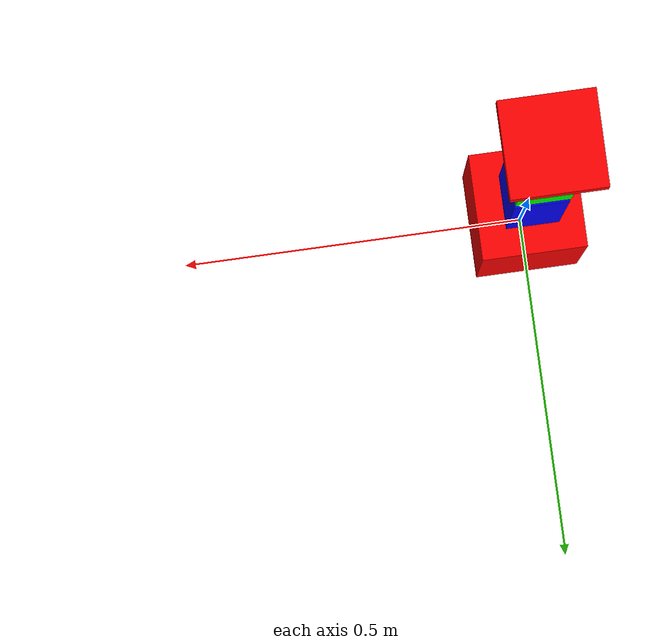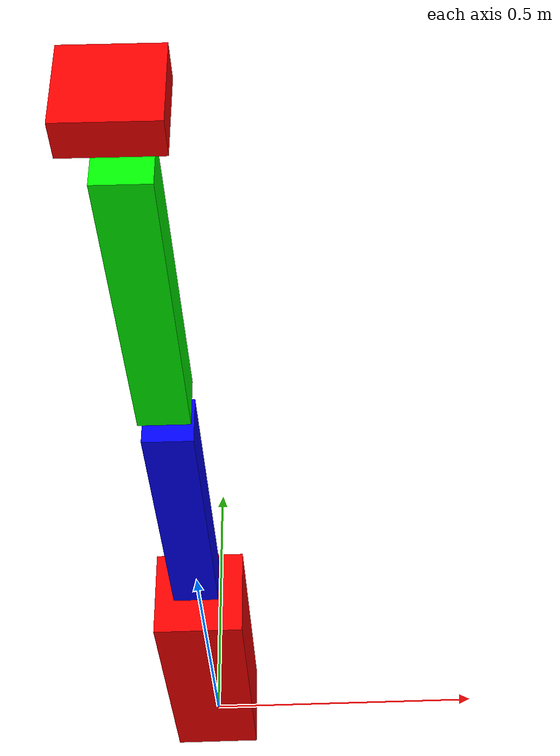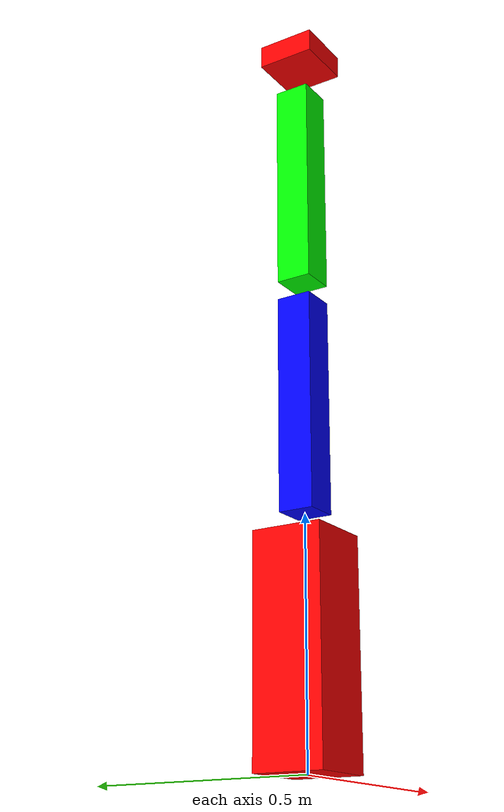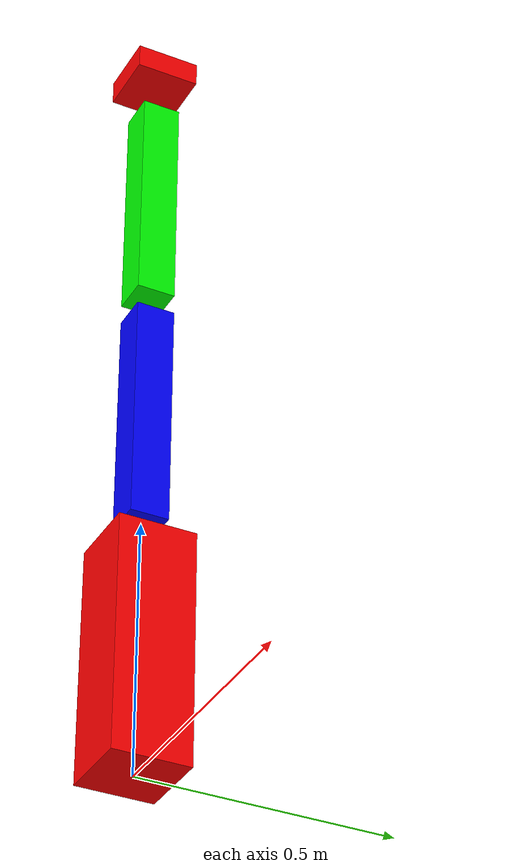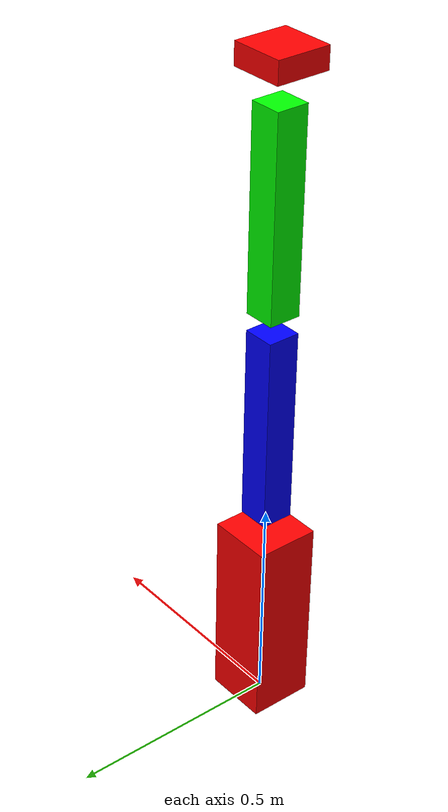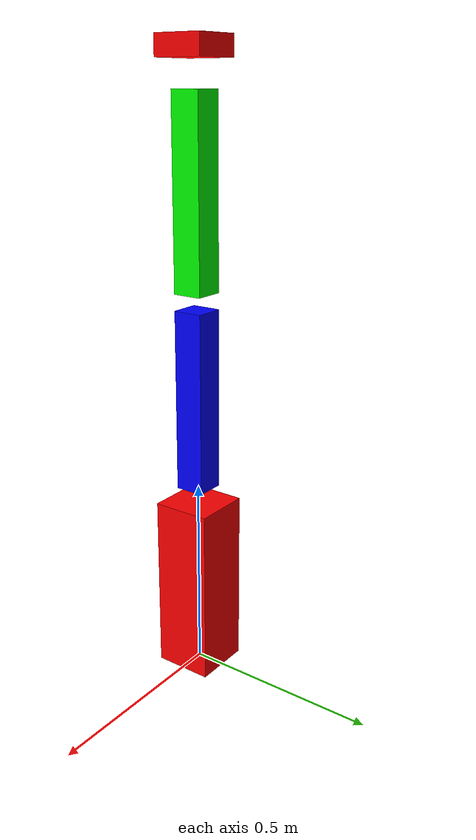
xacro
<?xml version="1.0"?>
<robot name="origins">
  <material name = "red">
     <color rgba = "1 0 0 1 "/>
  </material>
  <material name = "blue">
     <color rgba = "0 0 1 1 "/>
  </material>
  <material name = "green">
     <color rgba = "0 1 0 1 "/>
  </material>

  <link name="base_link">
    <visual>
      <geometry>
        <box size = " 0.15 0.15 0.46"/>
      </geometry>
      <origin xyz =" 0 0 0.23" rpy = " 0 0 0 "/>
      <material name = "red" />
    </visual>
    <collision>
      <geometry>
        <box size = " 0.15 0.15 0.46"/>
      </geometry>
    </collision>
    <inertial>
  <mass value="0.1"/>
  <inertia ixx="4.17e-4" ixy="0.0" ixz="0.0"
           iyy="1.75e-3" iyz="0.0"
           izz="2.08e-3"/>
   </inertial>

  </link>

<link name="box3">
    <visual>
      <geometry>
        <box size = " 0.075 0.075 0.46"/>
      </geometry>
      <origin xyz =" 0 0 0.23" rpy = " 0 0 0 "/>
      <material name = "green" />
    </visual>
    <collision>
      <geometry>
        <box size = " 0.15 0.15 0.46"/>
      </geometry>
    </collision>
    <inertial>
  <mass value="0.1"/>
  <inertia ixx="4.17e-4" ixy="0.0" ixz="0.0"
           iyy="1.75e-3" iyz="0.0"
           izz="2.08e-3"/>
   </inertial>
  </link>

  <link name="box2">
    <visual>
      <geometry>
        <box size = " 0.075 0.075 0.46"/>
      </geometry>
      <origin xyz =" 0 0 0.23" rpy = " 0 0 0 "/>
      <material name = "blue" />
    </visual>
    <collision>
      <geometry>
        <box size = " 0.15 0.15 0.46"/>
      </geometry>
    </collision>
    <inertial>
  <mass value="0.1"/>
  <inertia ixx="4.17e-4" ixy="0.0" ixz="0.0"
           iyy="1.75e-3" iyz="0.0"
           izz="2.08e-3"/>
   </inertial>
  </link>

  <link name="box4">
    <visual>
      <geometry>
        <box size = " 0.125 0.125 0.05"/>
      </geometry>
      <origin xyz =" 0 0 0.05" rpy = " 0 0 0 "/>
      <material name = "red" />
    </visual>
    <collision>
      <geometry>
        <box size = " 0.15 0.15 0.46"/>
      </geometry>
    </collision>
    <inertial>
  <mass value="0.1"/>
  <inertia ixx="4.17e-4" ixy="0.0" ixz="0.0"
           iyy="1.75e-3" iyz="0.0"
           izz="2.08e-3"/>
   </inertial>
  </link>

  <joint name = "base_box2_joint" type = "revolute">
     <parent link = "base_link" />
     <child link = "box2" />
        <axis xyz="1 0 0"/>
        <limit effort="1000.0" lower="-1.57" upper="1.57" velocity="0.5"/>
     <origin xyz = " 0 0 0.5 " rpy = " 0 0 0" />
  </joint>

  <joint name = "box2_box3_joint" type = "revolute">
     <parent link = "box2" />
     <child link = "box3" />
      <axis xyz="1 0 0"/>
        <limit effort="1000.0" lower="-1.57" upper="1.57" velocity="0.5"/>
     <origin xyz = " 0 0 0.5 " rpy = " 0 0 0 " />
  </joint>

  <joint name = "box3_box4_joint" type = "fixed">
     <parent link = "box3" />
     <child link = "box4" />
     <origin xyz = " 0 0 0.5 " rpy = " 0 0 0 " />
  </joint>

</robot>
